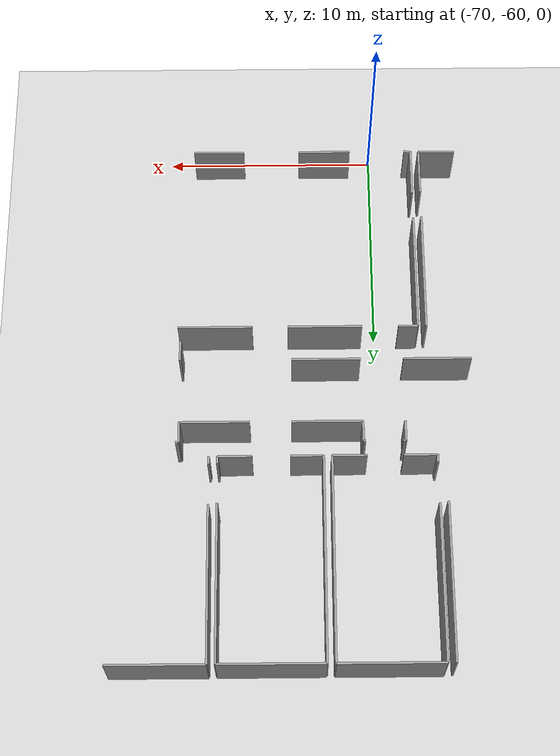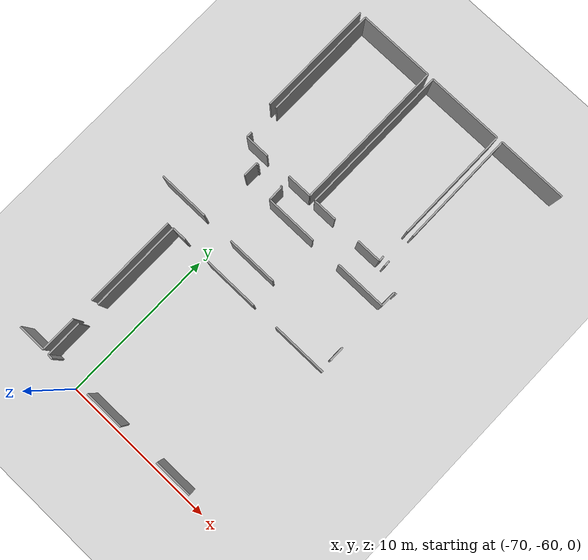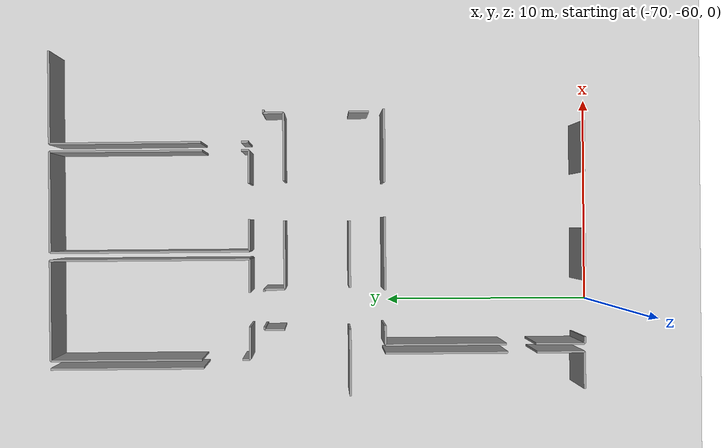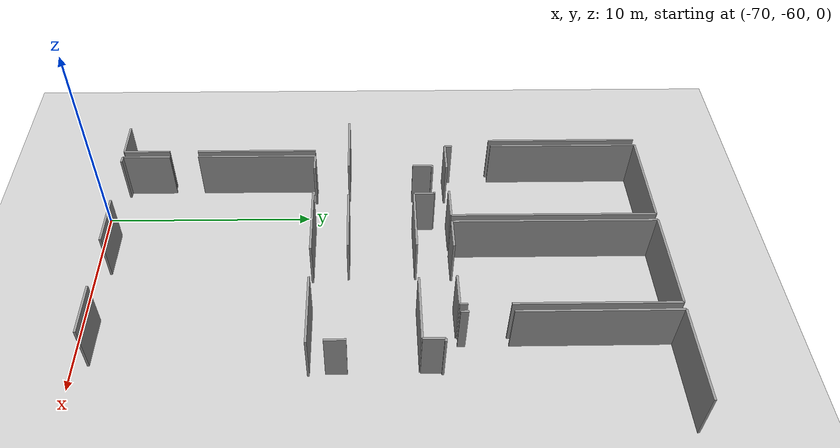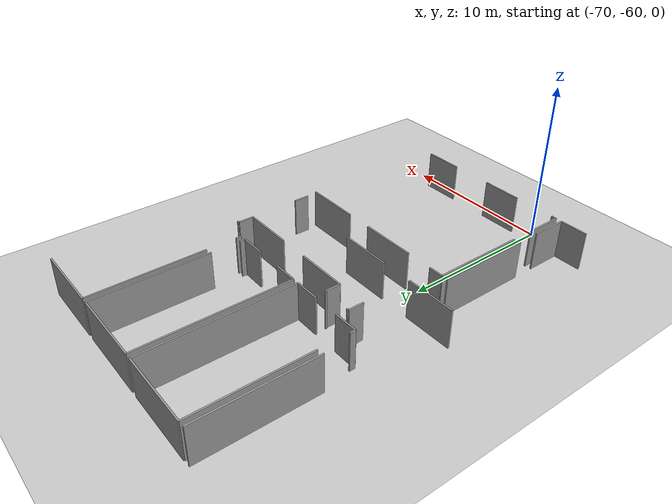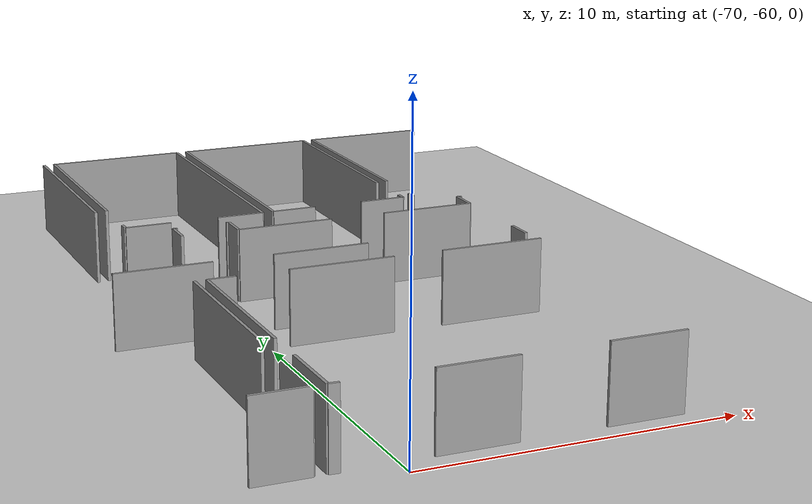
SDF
<sdf version="1.6">
 <world name="default">
  <model name="ground_plane">
   <static>1</static>
   <link name="link">
    <collision name="collision">
     <geometry><plane><normal>0 0 1</normal><size>100 100</size></plane></geometry>
     <surface><friction><ode><mu>100</mu><mu2>50</mu2></ode></friction></surface>
    </collision>
    <visual name="visual">
     <cast_shadows>0</cast_shadows>
     <geometry><plane><normal>0 0 1</normal><size>100 100</size></plane></geometry>
     <material>
      <script><uri>file://media/materials/scripts/gazebo.material</uri><name>Gazebo/Grey</name></script>
     </material>
    </visual>
   </link>
  </model>
  <model name="0510045925_40">
   <static>1</static>
   <link name="Wall_1158">
    <collision name="Wall_1158_Collision">
     <geometry><box><size>7.38559935027 0.1 2.5</size></box></geometry>
     <pose>3.69279967514 0 1.25 0 0 0</pose>
    </collision>
    <visual name="Wall_1158_Visual">
     <pose>3.69279967514 0 1.25 0 0 0</pose>
     <geometry><box><size>7.38559935027 0.1 2.5</size></box></geometry>
     <material>
      <script><uri>file://media/materials/scripts/gazebo.material</uri><name>Gazebo/Grey</name></script>
      <ambient>1 1 1 1</ambient>
     </material>
    </visual>
    <pose>60.9104337453 -134.622395371 0 0 0 -1.57079632679</pose>
   </link>
   <link name="Wall_1164">
    <collision name="Wall_1164_Collision">
     <geometry><box><size>4.83337986346 0.1 2.5</size></box></geometry>
     <pose>2.41668993173 0 1.25 0 0 0</pose>
    </collision>
    <visual name="Wall_1164_Visual">
     <pose>2.41668993173 0 1.25 0 0 0</pose>
     <geometry><box><size>4.83337986346 0.1 2.5</size></box></geometry>
     <material>
      <script><uri>file://media/materials/scripts/gazebo.material</uri><name>Gazebo/Grey</name></script>
      <ambient>1 1 1 1</ambient>
     </material>
    </visual>
    <pose>61.3020481714 -134.629501789 0 0 0 0.0</pose>
   </link>
   <link name="Wall_1165">
    <collision name="Wall_1165_Collision">
     <geometry><box><size>9.61219258394 0.1 2.5</size></box></geometry>
     <pose>4.80609629197 0 1.25 0 0 0</pose>
    </collision>
    <visual name="Wall_1165_Visual">
     <pose>4.80609629197 0 1.25 0 0 0</pose>
     <geometry><box><size>9.61219258394 0.1 2.5</size></box></geometry>
     <material>
      <script><uri>file://media/materials/scripts/gazebo.material</uri><name>Gazebo/Grey</name></script>
      <ambient>1 1 1 1</ambient>
     </material>
    </visual>
    <pose>66.1354280348 -134.629501789 0 0 0 -1.57079632679</pose>
   </link>
   <link name="Wall_1166">
    <collision name="Wall_1166_Collision">
     <geometry><box><size>1.60579680719 0.1 2.5</size></box></geometry>
     <pose>0.802898403594 0 1.25 0 0 0</pose>
    </collision>
    <visual name="Wall_1166_Visual">
     <pose>0.802898403594 0 1.25 0 0 0</pose>
     <geometry><box><size>1.60579680719 0.1 2.5</size></box></geometry>
     <material>
      <script><uri>file://media/materials/scripts/gazebo.material</uri><name>Gazebo/Grey</name></script>
      <ambient>1 1 1 1</ambient>
     </material>
    </visual>
    <pose>66.1354280348 -144.241694373 0 0 0 3.14159265359</pose>
   </link>
   <link name="Wall_1167">
    <collision name="Wall_1167_Collision">
     <geometry><box><size>1.56671150478 0.1 2.5</size></box></geometry>
     <pose>0.783355752392 0 1.25 0 0 0</pose>
    </collision>
    <visual name="Wall_1167_Visual">
     <pose>0.783355752392 0 1.25 0 0 0</pose>
     <geometry><box><size>1.56671150478 0.1 2.5</size></box></geometry>
     <material>
      <script><uri>file://media/materials/scripts/gazebo.material</uri><name>Gazebo/Grey</name></script>
      <ambient>1 1 1 1</ambient>
     </material>
    </visual>
    <pose>62.8730742875 -144.241694373 0 0 0 3.14159265359</pose>
   </link>
   <link name="Wall_1168">
    <collision name="Wall_1168_Collision">
     <geometry><box><size>0.362173548895 0.1 2.5</size></box></geometry>
     <pose>0.181086774447 0 1.25 0 0 0</pose>
    </collision>
    <visual name="Wall_1168_Visual">
     <pose>0.181086774447 0 1.25 0 0 0</pose>
     <geometry><box><size>0.362173548895 0.1 2.5</size></box></geometry>
     <material>
      <script><uri>file://media/materials/scripts/gazebo.material</uri><name>Gazebo/Grey</name></script>
      <ambient>1 1 1 1</ambient>
     </material>
    </visual>
    <pose>61.3063627827 -144.241694373 0 0 0 1.57079632679</pose>
   </link>
   <link name="Wall_1169">
    <collision name="Wall_1169_Collision">
     <geometry><box><size>7.30235400681 0.1 2.5</size></box></geometry>
     <pose>3.65117700341 0 1.25 0 0 0</pose>
    </collision>
    <visual name="Wall_1169_Visual">
     <pose>3.65117700341 0 1.25 0 0 0</pose>
     <geometry><box><size>7.30235400681 0.1 2.5</size></box></geometry>
     <material>
      <script><uri>file://media/materials/scripts/gazebo.material</uri><name>Gazebo/Grey</name></script>
      <ambient>1 1 1 1</ambient>
     </material>
    </visual>
    <pose>61.3063627827 -141.931854521 0 0 0 1.57138717894</pose>
   </link>
   <link name="Wall_1170">
    <collision name="Wall_1170_Collision">
     <geometry><box><size>4.8663739499 0.1 2.5</size></box></geometry>
     <pose>2.43318697495 0 1.25 0 0 0</pose>
    </collision>
    <visual name="Wall_1170_Visual">
     <pose>2.43318697495 0 1.25 0 0 0</pose>
     <geometry><box><size>4.8663739499 0.1 2.5</size></box></geometry>
     <material>
      <script><uri>file://media/materials/scripts/gazebo.material</uri><name>Gazebo/Grey</name></script>
      <ambient>1 1 1 1</ambient>
     </material>
    </visual>
    <pose>66.5227278495 -134.635085404 0 0 0 0.0</pose>
   </link>
   <link name="Wall_1171">
    <collision name="Wall_1171_Collision">
     <geometry><box><size>7.36377249308 0.1 2.5</size></box></geometry>
     <pose>3.68188624654 0 1.25 0 0 0</pose>
    </collision>
    <visual name="Wall_1171_Visual">
     <pose>3.68188624654 0 1.25 0 0 0</pose>
     <geometry><box><size>7.36377249308 0.1 2.5</size></box></geometry>
     <material>
      <script><uri>file://media/materials/scripts/gazebo.material</uri><name>Gazebo/Grey</name></script>
      <ambient>1 1 1 1</ambient>
     </material>
    </visual>
    <pose>71.3891017994 -134.635085404 0 0 0 -1.57079632679</pose>
   </link>
   <link name="Wall_1172">
    <collision name="Wall_1172_Collision">
     <geometry><box><size>0.350498718307 0.1 2.5</size></box></geometry>
     <pose>0.175249359153 0 1.25 0 0 0</pose>
    </collision>
    <visual name="Wall_1172_Visual">
     <pose>0.175249359153 0 1.25 0 0 0</pose>
     <geometry><box><size>0.350498718307 0.1 2.5</size></box></geometry>
     <material>
      <script><uri>file://media/materials/scripts/gazebo.material</uri><name>Gazebo/Grey</name></script>
      <ambient>1 1 1 1</ambient>
     </material>
    </visual>
    <pose>71.3891017994 -143.885865841 0 0 0 -1.57079632679</pose>
   </link>
   <link name="Wall_1173">
    <collision name="Wall_1173_Collision">
     <geometry><box><size>1.58853836197 0.1 2.5</size></box></geometry>
     <pose>0.794269180985 0 1.25 0 0 0</pose>
    </collision>
    <visual name="Wall_1173_Visual">
     <pose>0.794269180985 0 1.25 0 0 0</pose>
     <geometry><box><size>1.58853836197 0.1 2.5</size></box></geometry>
     <material>
      <script><uri>file://media/materials/scripts/gazebo.material</uri><name>Gazebo/Grey</name></script>
      <ambient>1 1 1 1</ambient>
     </material>
    </visual>
    <pose>71.3891017994 -144.236364559 0 0 0 3.14159265359</pose>
   </link>
   <link name="Wall_1174">
    <collision name="Wall_1174_Collision">
     <geometry><box><size>1.53219461435 0.1 2.5</size></box></geometry>
     <pose>0.766097307175 0 1.25 0 0 0</pose>
    </collision>
    <visual name="Wall_1174_Visual">
     <pose>0.766097307175 0 1.25 0 0 0</pose>
     <geometry><box><size>1.53219461435 0.1 2.5</size></box></geometry>
     <material>
      <script><uri>file://media/materials/scripts/gazebo.material</uri><name>Gazebo/Grey</name></script>
      <ambient>1 1 1 1</ambient>
     </material>
    </visual>
    <pose>68.0589832745 -144.236364559 0 0 0 3.14159265359</pose>
   </link>
   <link name="Wall_1175">
    <collision name="Wall_1175_Collision">
     <geometry><box><size>9.6012800141 0.1 2.5</size></box></geometry>
     <pose>4.80064000705 0 1.25 0 0 0</pose>
    </collision>
    <visual name="Wall_1175_Visual">
     <pose>4.80064000705 0 1.25 0 0 0</pose>
     <geometry><box><size>9.6012800141 0.1 2.5</size></box></geometry>
     <material>
      <script><uri>file://media/materials/scripts/gazebo.material</uri><name>Gazebo/Grey</name></script>
      <ambient>1 1 1 1</ambient>
     </material>
    </visual>
    <pose>66.5267886602 -144.236364559 0 0 0 1.57121927152</pose>
   </link>
   <link name="Wall_1176">
    <collision name="Wall_1176_Collision">
     <geometry><box><size>4.47780513185 0.1 2.5</size></box></geometry>
     <pose>2.23890256592 0 1.25 0 0 0</pose>
    </collision>
    <visual name="Wall_1176_Visual">
     <pose>2.23890256592 0 1.25 0 0 0</pose>
     <geometry><box><size>4.47780513185 0.1 2.5</size></box></geometry>
     <material>
      <script><uri>file://media/materials/scripts/gazebo.material</uri><name>Gazebo/Grey</name></script>
      <ambient>1 1 1 1</ambient>
     </material>
    </visual>
    <pose>71.7715794015 -134.630516992 0 0 0 0.0</pose>
   </link>
   <link name="Wall_1180">
    <collision name="Wall_1180_Collision">
     <geometry><box><size>0.358112738255 0.1 2.5</size></box></geometry>
     <pose>0.179056369128 0 1.25 0 0 0</pose>
    </collision>
    <visual name="Wall_1180_Visual">
     <pose>0.179056369128 0 1.25 0 0 0</pose>
     <geometry><box><size>0.358112738255 0.1 2.5</size></box></geometry>
     <material>
      <script><uri>file://media/materials/scripts/gazebo.material</uri><name>Gazebo/Grey</name></script>
      <ambient>1 1 1 1</ambient>
     </material>
    </visual>
    <pose>71.7934062587 -144.233572752 0 0 0 1.57079632679</pose>
   </link>
   <link name="Wall_1181">
    <collision name="Wall_1181_Collision">
     <geometry><box><size>7.30365435017 0.1 2.5</size></box></geometry>
     <pose>3.65182717509 0 1.25 0 0 0</pose>
    </collision>
    <visual name="Wall_1181_Visual">
     <pose>3.65182717509 0 1.25 0 0 0</pose>
     <geometry><box><size>7.30365435017 0.1 2.5</size></box></geometry>
     <material>
      <script><uri>file://media/materials/scripts/gazebo.material</uri><name>Gazebo/Grey</name></script>
      <ambient>1 1 1 1</ambient>
     </material>
    </visual>
    <pose>71.7934062587 -141.934138727 0 0 0 1.57378481566</pose>
   </link>
   <link name="Wall_1190">
    <collision name="Wall_1190_Collision">
     <geometry><box><size>5.90721047689 0.1 2.5</size></box></geometry>
     <pose>2.95360523845 0 1.25 0 0 0</pose>
    </collision>
    <visual name="Wall_1190_Visual">
     <pose>2.95360523845 0 1.25 0 0 0</pose>
     <geometry><box><size>5.90721047689 0.1 2.5</size></box></geometry>
     <material>
      <script><uri>file://media/materials/scripts/gazebo.material</uri><name>Gazebo/Grey</name></script>
      <ambient>1 1 1 1</ambient>
     </material>
    </visual>
    <pose>61.558386843 -150.753458034 0 0 0 -1.57079632679</pose>
   </link>
   <link name="Wall_1191">
    <collision name="Wall_1191_Collision">
     <geometry><box><size>2.28090657598 0.1 2.5</size></box></geometry>
     <pose>1.14045328799 0 1.25 0 0 0</pose>
    </collision>
    <visual name="Wall_1191_Visual">
     <pose>1.14045328799 0 1.25 0 0 0</pose>
     <geometry><box><size>2.28090657598 0.1 2.5</size></box></geometry>
     <material>
      <script><uri>file://media/materials/scripts/gazebo.material</uri><name>Gazebo/Grey</name></script>
      <ambient>1 1 1 1</ambient>
     </material>
    </visual>
    <pose>61.558386843 -158.0687546 0 0 0 -1.57079632679</pose>
   </link>
   <link name="Wall_1192">
    <collision name="Wall_1192_Collision">
     <geometry><box><size>1.77406664805 0.1 2.5</size></box></geometry>
     <pose>0.887033324027 0 1.25 0 0 0</pose>
    </collision>
    <visual name="Wall_1192_Visual">
     <pose>0.887033324027 0 1.25 0 0 0</pose>
     <geometry><box><size>1.77406664805 0.1 2.5</size></box></geometry>
     <material>
      <script><uri>file://media/materials/scripts/gazebo.material</uri><name>Gazebo/Grey</name></script>
      <ambient>1 1 1 1</ambient>
     </material>
    </visual>
    <pose>61.558386843 -160.349661176 0 0 0 3.14159265359</pose>
   </link>
   <link name="Wall_1194">
    <collision name="Wall_1194_Collision">
     <geometry><box><size>2.34359534022 0.1 2.5</size></box></geometry>
     <pose>1.17179767011 0 1.25 0 0 0</pose>
    </collision>
    <visual name="Wall_1194_Visual">
     <pose>1.17179767011 0 1.25 0 0 0</pose>
     <geometry><box><size>2.34359534022 0.1 2.5</size></box></geometry>
     <material>
      <script><uri>file://media/materials/scripts/gazebo.material</uri><name>Gazebo/Grey</name></script>
      <ambient>1 1 1 1</ambient>
     </material>
    </visual>
    <pose>61.9586304916 -160.360828405 0 0 0 1.57079632679</pose>
   </link>
   <link name="Wall_1195">
    <collision name="Wall_1195_Collision">
     <geometry><box><size>5.83665389203 0.1 2.5</size></box></geometry>
     <pose>2.91832694602 0 1.25 0 0 0</pose>
    </collision>
    <visual name="Wall_1195_Visual">
     <pose>2.91832694602 0 1.25 0 0 0</pose>
     <geometry><box><size>5.83665389203 0.1 2.5</size></box></geometry>
     <material>
      <script><uri>file://media/materials/scripts/gazebo.material</uri><name>Gazebo/Grey</name></script>
      <ambient>1 1 1 1</ambient>
     </material>
    </visual>
    <pose>61.9586304916 -156.598994949 0 0 0 1.57079632679</pose>
   </link>
   <link name="Wall_1196">
    <collision name="Wall_1196_Collision">
     <geometry><box><size>0.92814903175 0.1 2.5</size></box></geometry>
     <pose>0.464074515875 0 1.25 0 0 0</pose>
    </collision>
    <visual name="Wall_1196_Visual">
     <pose>0.464074515875 0 1.25 0 0 0</pose>
     <geometry><box><size>0.92814903175 0.1 2.5</size></box></geometry>
     <material>
      <script><uri>file://media/materials/scripts/gazebo.material</uri><name>Gazebo/Grey</name></script>
      <ambient>1 1 1 1</ambient>
     </material>
    </visual>
    <pose>61.9586304916 -150.762341057 0 0 0 0.0</pose>
   </link>
   <link name="Wall_1197">
    <collision name="Wall_1197_Collision">
     <geometry><box><size>3.52072282429 0.1 2.5</size></box></geometry>
     <pose>1.76036141215 0 1.25 0 0 0</pose>
    </collision>
    <visual name="Wall_1197_Visual">
     <pose>1.76036141215 0 1.25 0 0 0</pose>
     <geometry><box><size>3.52072282429 0.1 2.5</size></box></geometry>
     <material>
      <script><uri>file://media/materials/scripts/gazebo.material</uri><name>Gazebo/Grey</name></script>
      <ambient>1 1 1 1</ambient>
     </material>
    </visual>
    <pose>64.6088170351 -150.762341057 0 0 0 0.0</pose>
   </link>
   <link name="Wall_1198">
    <collision name="Wall_1198_Collision">
     <geometry><box><size>3.52529123626 0.1 2.5</size></box></geometry>
     <pose>1.76264561813 0 1.25 0 0 0</pose>
    </collision>
    <visual name="Wall_1198_Visual">
     <pose>1.76264561813 0 1.25 0 0 0</pose>
     <geometry><box><size>3.52529123626 0.1 2.5</size></box></geometry>
     <material>
      <script><uri>file://media/materials/scripts/gazebo.material</uri><name>Gazebo/Grey</name></script>
      <ambient>1 1 1 1</ambient>
     </material>
    </visual>
    <pose>69.8109692647 -150.762341057 0 0 0 0.0</pose>
   </link>
   <link name="Wall_1202">
    <collision name="Wall_1202_Collision">
     <geometry><box><size>2.47125707469 0.1 2.5</size></box></geometry>
     <pose>1.23562853735 0 1.25 0 0 0</pose>
    </collision>
    <visual name="Wall_1202_Visual">
     <pose>1.23562853735 0 1.25 0 0 0</pose>
     <geometry><box><size>2.47125707469 0.1 2.5</size></box></geometry>
     <material>
      <script><uri>file://media/materials/scripts/gazebo.material</uri><name>Gazebo/Grey</name></script>
      <ambient>1 1 1 1</ambient>
     </material>
    </visual>
    <pose>72.7091190579 -160.378594452 0 0 0 3.14159265359</pose>
   </link>
   <link name="Wall_1203">
    <collision name="Wall_1203_Collision">
     <geometry><box><size>2.53013882896 0.1 2.5</size></box></geometry>
     <pose>1.26506941448 0 1.25 0 0 0</pose>
    </collision>
    <visual name="Wall_1203_Visual">
     <pose>1.26506941448 0 1.25 0 0 0</pose>
     <geometry><box><size>2.53013882896 0.1 2.5</size></box></geometry>
     <material>
      <script><uri>file://media/materials/scripts/gazebo.material</uri><name>Gazebo/Grey</name></script>
      <ambient>1 1 1 1</ambient>
     </material>
    </visual>
    <pose>67.5206720642 -160.378594452 0 0 0 3.14159265359</pose>
   </link>
   <link name="Wall_1204">
    <collision name="Wall_1204_Collision">
     <geometry><box><size>0.331939446138 0.1 2.5</size></box></geometry>
     <pose>0.165969723069 0 1.25 0 0 0</pose>
    </collision>
    <visual name="Wall_1204_Visual">
     <pose>0.165969723069 0 1.25 0 0 0</pose>
     <geometry><box><size>0.331939446138 0.1 2.5</size></box></geometry>
     <material>
      <script><uri>file://media/materials/scripts/gazebo.material</uri><name>Gazebo/Grey</name></script>
      <ambient>1 1 1 1</ambient>
     </material>
    </visual>
    <pose>62.29009416 -160.378594452 0 0 0 3.08804511711</pose>
   </link>
   <link name="Wall_1277">
    <collision name="Wall_1277_Collision">
     <geometry><box><size>0.970787543463 0.1 2.5</size></box></geometry>
     <pose>0.485393771732 0 1.25 0 0 0</pose>
    </collision>
    <visual name="Wall_1277_Visual">
     <pose>0.485393771732 0 1.25 0 0 0</pose>
     <geometry><box><size>0.970787543463 0.1 2.5</size></box></geometry>
     <material>
      <script><uri>file://media/materials/scripts/gazebo.material</uri><name>Gazebo/Grey</name></script>
      <ambient>1 1 1 1</ambient>
     </material>
    </visual>
    <pose>62.7342453237 -145.91982437 0 0 0 1.57079632679</pose>
   </link>
   <link name="Wall_1278">
    <collision name="Wall_1278_Collision">
     <geometry><box><size>0.129945940458 0.1 2.5</size></box></geometry>
     <pose>0.0649729702292 0 1.25 0 0 0</pose>
    </collision>
    <visual name="Wall_1278_Visual">
     <pose>0.0649729702292 0 1.25 0 0 0</pose>
     <geometry><box><size>0.129945940458 0.1 2.5</size></box></geometry>
     <material>
      <script><uri>file://media/materials/scripts/gazebo.material</uri><name>Gazebo/Grey</name></script>
      <ambient>1 1 1 1</ambient>
     </material>
    </visual>
    <pose>62.7342453237 -144.949036826 0 0 0 0.0</pose>
   </link>
   <link name="Wall_1279">
    <collision name="Wall_1279_Collision">
     <geometry><box><size>0.103550671303 0.1 2.5</size></box></geometry>
     <pose>0.0517753356514 0 1.25 0 0 0</pose>
    </collision>
    <visual name="Wall_1279_Visual">
     <pose>0.0517753356514 0 1.25 0 0 0</pose>
     <geometry><box><size>0.103550671303 0.1 2.5</size></box></geometry>
     <material>
      <script><uri>file://media/materials/scripts/gazebo.material</uri><name>Gazebo/Grey</name></script>
      <ambient>1 1 1 1</ambient>
     </material>
    </visual>
    <pose>64.5753153473 -144.949036826 0 0 0 0.0</pose>
   </link>
   <link name="Wall_1280">
    <collision name="Wall_1280_Collision">
     <geometry><box><size>0.976624958757 0.1 2.5</size></box></geometry>
     <pose>0.488312479379 0 1.25 0 0 0</pose>
    </collision>
    <visual name="Wall_1280_Visual">
     <pose>0.488312479379 0 1.25 0 0 0</pose>
     <geometry><box><size>0.976624958757 0.1 2.5</size></box></geometry>
     <material>
      <script><uri>file://media/materials/scripts/gazebo.material</uri><name>Gazebo/Grey</name></script>
      <ambient>1 1 1 1</ambient>
     </material>
    </visual>
    <pose>64.6788660186 -144.949036826 0 0 0 -1.57079632679</pose>
   </link>
   <link name="Wall_1281">
    <collision name="Wall_1281_Collision">
     <geometry><box><size>3.30372325575 0.1 2.5</size></box></geometry>
     <pose>1.65186162788 0 1.25 0 0 0</pose>
    </collision>
    <visual name="Wall_1281_Visual">
     <pose>1.65186162788 0 1.25 0 0 0</pose>
     <geometry><box><size>3.30372325575 0.1 2.5</size></box></geometry>
     <material>
      <script><uri>file://media/materials/scripts/gazebo.material</uri><name>Gazebo/Grey</name></script>
      <ambient>1 1 1 1</ambient>
     </material>
    </visual>
    <pose>64.6788660186 -145.925661785 0 0 0 0.0</pose>
   </link>
   <link name="Wall_1282">
    <collision name="Wall_1282_Collision">
     <geometry><box><size>3.26616075734 0.1 2.5</size></box></geometry>
     <pose>1.63308037867 0 1.25 0 0 0</pose>
    </collision>
    <visual name="Wall_1282_Visual">
     <pose>1.63308037867 0 1.25 0 0 0</pose>
     <geometry><box><size>3.26616075734 0.1 2.5</size></box></geometry>
     <material>
      <script><uri>file://media/materials/scripts/gazebo.material</uri><name>Gazebo/Grey</name></script>
      <ambient>1 1 1 1</ambient>
     </material>
    </visual>
    <pose>69.91604274 -145.925661785 0 0 0 0.0</pose>
   </link>
   <link name="Wall_1283">
    <collision name="Wall_1283_Collision">
     <geometry><box><size>0.974340752773 0.1 2.5</size></box></geometry>
     <pose>0.487170376386 0 1.25 0 0 0</pose>
    </collision>
    <visual name="Wall_1283_Visual">
     <pose>0.487170376386 0 1.25 0 0 0</pose>
     <geometry><box><size>0.974340752773 0.1 2.5</size></box></geometry>
     <material>
      <script><uri>file://media/materials/scripts/gazebo.material</uri><name>Gazebo/Grey</name></script>
      <ambient>1 1 1 1</ambient>
     </material>
    </visual>
    <pose>73.1822034974 -145.925661785 0 0 0 1.57079632679</pose>
   </link>
   <link name="Wall_1284">
    <collision name="Wall_1284_Collision">
     <geometry><box><size>0.14999619299 0.1 2.5</size></box></geometry>
     <pose>0.074998096495 0 1.25 0 0 0</pose>
    </collision>
    <visual name="Wall_1284_Visual">
     <pose>0.074998096495 0 1.25 0 0 0</pose>
     <geometry><box><size>0.14999619299 0.1 2.5</size></box></geometry>
     <material>
      <script><uri>file://media/materials/scripts/gazebo.material</uri><name>Gazebo/Grey</name></script>
      <ambient>1 1 1 1</ambient>
     </material>
    </visual>
    <pose>73.1822034974 -144.951321032 0 0 0 0.0</pose>
   </link>
   <link name="Wall_1341">
    <collision name="Wall_1341_Collision">
     <geometry><box><size>0.965457729499 0.1 2.5</size></box></geometry>
     <pose>0.48272886475 0 1.25 0 0 0</pose>
    </collision>
    <visual name="Wall_1341_Visual">
     <pose>0.48272886475 0 1.25 0 0 0</pose>
     <geometry><box><size>0.965457729499 0.1 2.5</size></box></geometry>
     <material>
      <script><uri>file://media/materials/scripts/gazebo.material</uri><name>Gazebo/Grey</name></script>
      <ambient>1 1 1 1</ambient>
     </material>
    </visual>
    <pose>73.1999695439 -150.035202152 0 0 0 1.57079632679</pose>
   </link>
   <link name="Wall_1343">
    <collision name="Wall_1343_Collision">
     <geometry><box><size>3.22707545494 0.1 2.5</size></box></geometry>
     <pose>1.61353772747 0 1.25 0 0 0</pose>
    </collision>
    <visual name="Wall_1343_Visual">
     <pose>1.61353772747 0 1.25 0 0 0</pose>
     <geometry><box><size>3.22707545494 0.1 2.5</size></box></geometry>
     <material>
      <script><uri>file://media/materials/scripts/gazebo.material</uri><name>Gazebo/Grey</name></script>
      <ambient>1 1 1 1</ambient>
     </material>
    </visual>
    <pose>67.9607624172 -149.069744423 0 0 0 3.14159265359</pose>
   </link>
   <link name="Wall_1344">
    <collision name="Wall_1344_Collision">
     <geometry><box><size>3.21489302302 0.1 2.5</size></box></geometry>
     <pose>1.60744651151 0 1.25 0 0 0</pose>
    </collision>
    <visual name="Wall_1344_Visual">
     <pose>1.60744651151 0 1.25 0 0 0</pose>
     <geometry><box><size>3.21489302302 0.1 2.5</size></box></geometry>
     <material>
      <script><uri>file://media/materials/scripts/gazebo.material</uri><name>Gazebo/Grey</name></script>
      <ambient>1 1 1 1</ambient>
     </material>
    </visual>
    <pose>62.7147026725 -149.069744423 0 0 0 3.14159265359</pose>
   </link>
   <pose>-133.95 101.083118449 0 0 0 0</pose>
  </model>
 </world>
</sdf>
